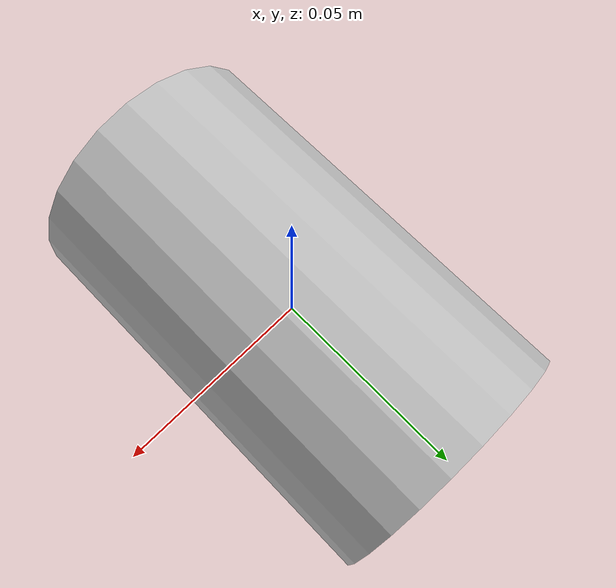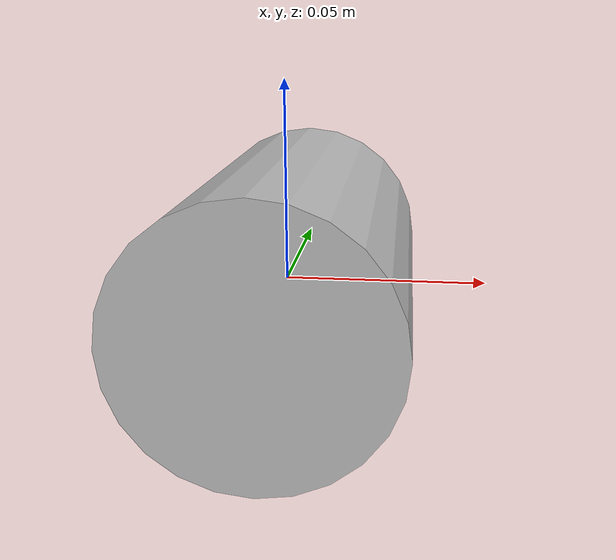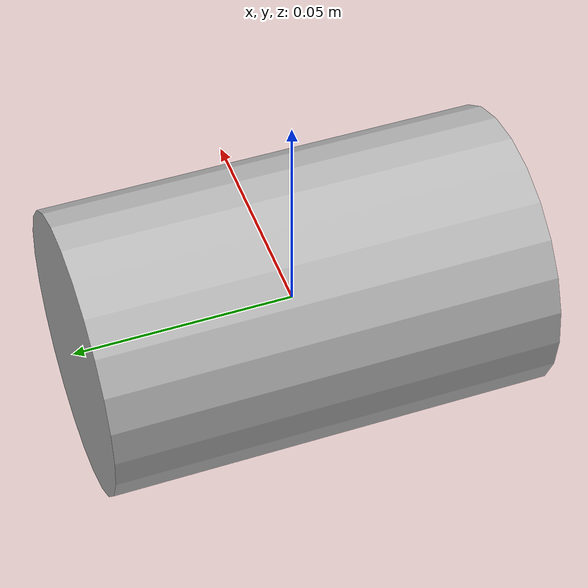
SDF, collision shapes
<?xml version="1.0"?>
<sdf version="1.7">
  <model name="ycb_tomato_soup_can">
    <link name="ycb_tomato_soup_can_base_link">
      <inertial>
        <mass>0.349000</mass>
        <inertia>
          <ixx>0.000402</ixx>
          <ixy>0</ixy>
          <ixz>0</ixz>
          <iyy>0.000200</iyy>
          <iyz>0</iyz>
          <izz>0.000402</izz>
        </inertia>
      </inertial>
      <visual name="ycb_tomato_soup_can_base_link">
        <pose>-0.0018  0.051 -0.084 1.57 0.13 0.0</pose>
        <geometry>
          <mesh>
            <uri>package://drake_models/ycb/meshes/005_tomato_soup_can_textured.obj</uri>
          </mesh>
        </geometry>
      </visual>
      <collision name="box_collision">
        <pose>0 0 0 -1.57 0 0</pose>
        <geometry>
          <cylinder>
            <radius>0.031850</radius>
            <length>0.099900</length>
          </cylinder>
        </geometry>
        <drake:proximity_properties>
          <drake:rigid_hydroelastic/>
          <drake:mesh_resolution_hint>0.01</drake:mesh_resolution_hint>
        </drake:proximity_properties>
      </collision>
      <collision name="point_collision1">
        <pose>0.016425 0.050450 0.016425 0 0 0 </pose>
        <geometry>
          <sphere>
            <radius>1e-7</radius>
          </sphere>
        </geometry>
        <drake:proximity_properties>
          <drake:rigid_hydroelastic/>
          <drake:mesh_resolution_hint>0.01</drake:mesh_resolution_hint>
        </drake:proximity_properties>
      </collision>
      <collision name="point_collision2">
        <pose>0.016425 -0.050450 0.016425 0 0 0 </pose>
        <geometry>
          <sphere>
            <radius>1e-7</radius>
          </sphere>
        </geometry>
        <drake:proximity_properties>
          <drake:rigid_hydroelastic/>
          <drake:mesh_resolution_hint>0.01</drake:mesh_resolution_hint>
        </drake:proximity_properties>
      </collision>
      <collision name="point_collision3">
        <pose>-0.016425 0.050450 0.016425 0 0 0 </pose>
        <geometry>
          <sphere>
            <radius>1e-7</radius>
          </sphere>
        </geometry>
        <drake:proximity_properties>
          <drake:rigid_hydroelastic/>
          <drake:mesh_resolution_hint>0.01</drake:mesh_resolution_hint>
        </drake:proximity_properties>
      </collision>
      <collision name="point_collision4">
        <pose>-0.016425 -0.050450 0.016425 0 0 0 </pose>
        <geometry>
          <sphere>
            <radius>1e-7</radius>
          </sphere>
        </geometry>
        <drake:proximity_properties>
          <drake:rigid_hydroelastic/>
          <drake:mesh_resolution_hint>0.01</drake:mesh_resolution_hint>
        </drake:proximity_properties>
      </collision>
      <collision name="point_collision5">
        <pose>0.016425 0.050450 -0.016425 0 0 0 </pose>
        <geometry>
          <sphere>
            <radius>1e-7</radius>
          </sphere>
        </geometry>
        <drake:proximity_properties>
          <drake:rigid_hydroelastic/>
          <drake:mesh_resolution_hint>0.01</drake:mesh_resolution_hint>
        </drake:proximity_properties>
      </collision>
      <collision name="point_collision6">
        <pose>0.016425 -0.050450 -0.016425 0 0 0 </pose>
        <geometry>
          <sphere>
            <radius>1e-7</radius>
          </sphere>
        </geometry>
        <drake:proximity_properties>
          <drake:rigid_hydroelastic/>
          <drake:mesh_resolution_hint>0.01</drake:mesh_resolution_hint>
        </drake:proximity_properties>
      </collision>
      <collision name="point_collision7">
        <pose>-0.016425 0.050450 -0.016425 0 0 0 </pose>
        <geometry>
          <sphere>
            <radius>1e-7</radius>
          </sphere>
        </geometry>
        <drake:proximity_properties>
          <drake:rigid_hydroelastic/>
          <drake:mesh_resolution_hint>0.01</drake:mesh_resolution_hint>
        </drake:proximity_properties>
      </collision>
      <collision name="point_collision8">
        <pose>-0.016425 -0.050450 -0.016425 0 0 0 </pose>
        <geometry>
          <sphere>
            <radius>1e-7</radius>
          </sphere>
        </geometry>
        <drake:proximity_properties>
          <drake:rigid_hydroelastic/>
          <drake:mesh_resolution_hint>0.01</drake:mesh_resolution_hint>
        </drake:proximity_properties>
      </collision>
    </link>
  </model>
</sdf>
